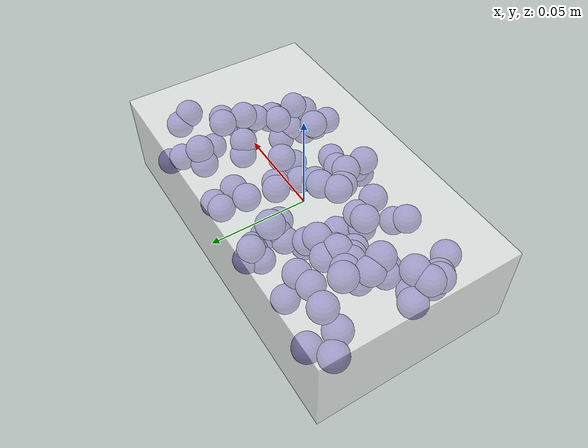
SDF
<sdf version="1.7">
  <model name="blue_berry_box_small_soft">
    <link name="base_link">
      <inertial>
        <mass>0.25</mass>
        <inertia>
          <ixx>2.505e-04</ixx>
          <ixy>0.000e+00</ixy>
          <ixz>0.000e+00</ixz>
          <iyy>7.172e-04</iyy>
          <iyz>0.000e+00</iyz>
          <izz>8.833e-04</izz>
        </inertia>
      </inertial>
      <visual name="blue_berry_box_pretty_visual_visual_box">
        <geometry>
          <box>
            <size>0.18 0.1 0.045</size>
          </box>
        </geometry>
        <material>
          <diffuse>1 1 1 0.5</diffuse>
        </material>
      </visual>
      <visual name="blue_berry_box_pretty_visual_visual_berry_0">
        <pose>-0.07430941844855744 -0.02220805133053815 0.007605354956542468 0 0 0</pose>
        <geometry>
          <sphere>
            <radius>0.007</radius>
          </sphere>
        </geometry>
        <material>
          <diffuse>0.27 0.25 0.59 1.0</diffuse>
        </material>
      </visual>
      <visual name="blue_berry_box_pretty_visual_visual_berry_1">
        <pose>-0.010653247734015048 -0.01248469615182175 0.011511769082825425 0 0 0</pose>
        <geometry>
          <sphere>
            <radius>0.007</radius>
          </sphere>
        </geometry>
        <material>
          <diffuse>0.27 0.25 0.59 1.0</diffuse>
        </material>
      </visual>
      <visual name="blue_berry_box_pretty_visual_visual_berry_2">
        <pose>0.017580059877788212 -0.008492974465506481 -0.004392680172807438 0 0 0</pose>
        <geometry>
          <sphere>
            <radius>0.007</radius>
          </sphere>
        </geometry>
        <material>
          <diffuse>0.27 0.25 0.59 1.0</diffuse>
        </material>
      </visual>
      <visual name="blue_berry_box_pretty_visual_visual_berry_3">
        <pose>-0.03567193680616104 -0.035642193882738774 8.770727036002887e-05 0 0 0</pose>
        <geometry>
          <sphere>
            <radius>0.007</radius>
          </sphere>
        </geometry>
        <material>
          <diffuse>0.27 0.25 0.59 1.0</diffuse>
        </material>
      </visual>
      <visual name="blue_berry_box_pretty_visual_visual_berry_4">
        <pose>-0.035261084901901336 0.032127740043840794 -0.015054265896921588 0 0 0</pose>
        <geometry>
          <sphere>
            <radius>0.007</radius>
          </sphere>
        </geometry>
        <material>
          <diffuse>0.27 0.25 0.59 1.0</diffuse>
        </material>
      </visual>
      <visual name="blue_berry_box_pretty_visual_visual_berry_5">
        <pose>0.06577807256967984 0.035331599129718755 -0.005038149878498498 0 0 0</pose>
        <geometry>
          <sphere>
            <radius>0.007</radius>
          </sphere>
        </geometry>
        <material>
          <diffuse>0.27 0.25 0.59 1.0</diffuse>
        </material>
      </visual>
      <visual name="blue_berry_box_pretty_visual_visual_berry_6">
        <pose>-0.0032058133105082043 0.030891159279397215 -0.011044628561388645 0 0 0</pose>
        <geometry>
          <sphere>
            <radius>0.007</radius>
          </sphere>
        </geometry>
        <material>
          <diffuse>0.27 0.25 0.59 1.0</diffuse>
        </material>
      </visual>
      <visual name="blue_berry_box_pretty_visual_visual_berry_7">
        <pose>-0.0062295520308973396 0.03359610233911847 -0.008332372904054093 0 0 0</pose>
        <geometry>
          <sphere>
            <radius>0.007</radius>
          </sphere>
        </geometry>
        <material>
          <diffuse>0.27 0.25 0.59 1.0</diffuse>
        </material>
      </visual>
      <visual name="blue_berry_box_pretty_visual_visual_berry_8">
        <pose>0.017154872599262794 -0.031200393454058364 -0.005961092467394744 0 0 0</pose>
        <geometry>
          <sphere>
            <radius>0.007</radius>
          </sphere>
        </geometry>
        <material>
          <diffuse>0.27 0.25 0.59 1.0</diffuse>
        </material>
      </visual>
      <visual name="blue_berry_box_pretty_visual_visual_berry_9">
        <pose>-0.06830007897591524 -0.021237102051463484 0.002454422257315944 0 0 0</pose>
        <geometry>
          <sphere>
            <radius>0.007</radius>
          </sphere>
        </geometry>
        <material>
          <diffuse>0.27 0.25 0.59 1.0</diffuse>
        </material>
      </visual>
      <visual name="blue_berry_box_pretty_visual_visual_berry_10">
        <pose>-0.002943727383228678 0.01754849767698608 -0.00801187686136241 0 0 0</pose>
        <geometry>
          <sphere>
            <radius>0.007</radius>
          </sphere>
        </geometry>
        <material>
          <diffuse>0.27 0.25 0.59 1.0</diffuse>
        </material>
      </visual>
      <visual name="blue_berry_box_pretty_visual_visual_berry_11">
        <pose>-0.03318796746100854 -0.007263508184341162 -0.006242321270512743 0 0 0</pose>
        <geometry>
          <sphere>
            <radius>0.007</radius>
          </sphere>
        </geometry>
        <material>
          <diffuse>0.27 0.25 0.59 1.0</diffuse>
        </material>
      </visual>
      <visual name="blue_berry_box_pretty_visual_visual_berry_12">
        <pose>-0.007702137197730455 0.015945597468279817 -0.011449758405233327 0 0 0</pose>
        <geometry>
          <sphere>
            <radius>0.007</radius>
          </sphere>
        </geometry>
        <material>
          <diffuse>0.27 0.25 0.59 1.0</diffuse>
        </material>
      </visual>
      <visual name="blue_berry_box_pretty_visual_visual_berry_13">
        <pose>0.06255055087569998 -0.031459735568881174 -0.007772868810350005 0 0 0</pose>
        <geometry>
          <sphere>
            <radius>0.007</radius>
          </sphere>
        </geometry>
        <material>
          <diffuse>0.27 0.25 0.59 1.0</diffuse>
        </material>
      </visual>
      <visual name="blue_berry_box_pretty_visual_visual_berry_14">
        <pose>0.0776471185883804 0.0015481134314956901 -0.004604728886401234 0 0 0</pose>
        <geometry>
          <sphere>
            <radius>0.007</radius>
          </sphere>
        </geometry>
        <material>
          <diffuse>0.27 0.25 0.59 1.0</diffuse>
        </material>
      </visual>
      <visual name="blue_berry_box_pretty_visual_visual_berry_15">
        <pose>0.05949626313478422 -0.024543135567916114 -0.0041157920439034365 0 0 0</pose>
        <geometry>
          <sphere>
            <radius>0.007</radius>
          </sphere>
        </geometry>
        <material>
          <diffuse>0.27 0.25 0.59 1.0</diffuse>
        </material>
      </visual>
      <visual name="blue_berry_box_pretty_visual_visual_berry_16">
        <pose>0.00035443136602957004 -0.030869643147678195 0.006612451281425402 0 0 0</pose>
        <geometry>
          <sphere>
            <radius>0.007</radius>
          </sphere>
        </geometry>
        <material>
          <diffuse>0.27 0.25 0.59 1.0</diffuse>
        </material>
      </visual>
      <visual name="blue_berry_box_pretty_visual_visual_berry_17">
        <pose>-0.054748603497142556 -0.004947284016110831 0.012503631220972575 0 0 0</pose>
        <geometry>
          <sphere>
            <radius>0.007</radius>
          </sphere>
        </geometry>
        <material>
          <diffuse>0.27 0.25 0.59 1.0</diffuse>
        </material>
      </visual>
      <visual name="blue_berry_box_pretty_visual_visual_berry_18">
        <pose>0.060933551916554654 -0.00027376525656826883 0.011236244512459522 0 0 0</pose>
        <geometry>
          <sphere>
            <radius>0.007</radius>
          </sphere>
        </geometry>
        <material>
          <diffuse>0.27 0.25 0.59 1.0</diffuse>
        </material>
      </visual>
      <visual name="blue_berry_box_pretty_visual_visual_berry_19">
        <pose>0.07594882271148369 0.030059822415339443 0.00793514494786279 0 0 0</pose>
        <geometry>
          <sphere>
            <radius>0.007</radius>
          </sphere>
        </geometry>
        <material>
          <diffuse>0.27 0.25 0.59 1.0</diffuse>
        </material>
      </visual>
      <visual name="blue_berry_box_pretty_visual_visual_berry_20">
        <pose>0.05453813748763013 -0.024797790500372792 -0.0034131668532808405 0 0 0</pose>
        <geometry>
          <sphere>
            <radius>0.007</radius>
          </sphere>
        </geometry>
        <material>
          <diffuse>0.27 0.25 0.59 1.0</diffuse>
        </material>
      </visual>
      <visual name="blue_berry_box_pretty_visual_visual_berry_21">
        <pose>-0.07598131055630648 -0.00705259609198864 0.0025270978275175084 0 0 0</pose>
        <geometry>
          <sphere>
            <radius>0.007</radius>
          </sphere>
        </geometry>
        <material>
          <diffuse>0.27 0.25 0.59 1.0</diffuse>
        </material>
      </visual>
      <visual name="blue_berry_box_pretty_visual_visual_berry_22">
        <pose>0.010238926865785342 -0.01319278076681732 -0.0008949729615662042 0 0 0</pose>
        <geometry>
          <sphere>
            <radius>0.007</radius>
          </sphere>
        </geometry>
        <material>
          <diffuse>0.27 0.25 0.59 1.0</diffuse>
        </material>
      </visual>
      <visual name="blue_berry_box_pretty_visual_visual_berry_23">
        <pose>0.014515396366447983 0.007387775033332586 0.00023804356813362376 0 0 0</pose>
        <geometry>
          <sphere>
            <radius>0.007</radius>
          </sphere>
        </geometry>
        <material>
          <diffuse>0.27 0.25 0.59 1.0</diffuse>
        </material>
      </visual>
      <visual name="blue_berry_box_pretty_visual_visual_berry_24">
        <pose>0.04728213464054022 0.008433526938565236 -0.002210164741740163 0 0 0</pose>
        <geometry>
          <sphere>
            <radius>0.007</radius>
          </sphere>
        </geometry>
        <material>
          <diffuse>0.27 0.25 0.59 1.0</diffuse>
        </material>
      </visual>
      <visual name="blue_berry_box_pretty_visual_visual_berry_25">
        <pose>-0.07124653371825916 -0.024943125911344146 0.004950692700793149 0 0 0</pose>
        <geometry>
          <sphere>
            <radius>0.007</radius>
          </sphere>
        </geometry>
        <material>
          <diffuse>0.27 0.25 0.59 1.0</diffuse>
        </material>
      </visual>
      <visual name="blue_berry_box_pretty_visual_visual_berry_26">
        <pose>-0.03417567452455912 0.02500189983968687 -0.0019291013954617266 0 0 0</pose>
        <geometry>
          <sphere>
            <radius>0.007</radius>
          </sphere>
        </geometry>
        <material>
          <diffuse>0.27 0.25 0.59 1.0</diffuse>
        </material>
      </visual>
      <visual name="blue_berry_box_pretty_visual_visual_berry_27">
        <pose>0.006534544866611688 -0.038967403472837156 -0.006638502963409397 0 0 0</pose>
        <geometry>
          <sphere>
            <radius>0.007</radius>
          </sphere>
        </geometry>
        <material>
          <diffuse>0.27 0.25 0.59 1.0</diffuse>
        </material>
      </visual>
      <visual name="blue_berry_box_pretty_visual_visual_berry_28">
        <pose>0.022123895573799138 0.03446577979108177 -0.005336488941639551 0 0 0</pose>
        <geometry>
          <sphere>
            <radius>0.007</radius>
          </sphere>
        </geometry>
        <material>
          <diffuse>0.27 0.25 0.59 1.0</diffuse>
        </material>
      </visual>
      <visual name="blue_berry_box_pretty_visual_visual_berry_29">
        <pose>0.04902932329309374 -0.03810433335872243 -0.005135683307480715 0 0 0</pose>
        <geometry>
          <sphere>
            <radius>0.007</radius>
          </sphere>
        </geometry>
        <material>
          <diffuse>0.27 0.25 0.59 1.0</diffuse>
        </material>
      </visual>
      <visual name="blue_berry_box_pretty_visual_visual_berry_30">
        <pose>0.0605188546677516 0.012213101160558466 0.011934951121733355 0 0 0</pose>
        <geometry>
          <sphere>
            <radius>0.007</radius>
          </sphere>
        </geometry>
        <material>
          <diffuse>0.27 0.25 0.59 1.0</diffuse>
        </material>
      </visual>
      <visual name="blue_berry_box_pretty_visual_visual_berry_31">
        <pose>-0.028794012715577785 -0.015541540329592655 0.005668702694232346 0 0 0</pose>
        <geometry>
          <sphere>
            <radius>0.007</radius>
          </sphere>
        </geometry>
        <material>
          <diffuse>0.27 0.25 0.59 1.0</diffuse>
        </material>
      </visual>
      <visual name="blue_berry_box_pretty_visual_visual_berry_32">
        <pose>0.05031785434824483 0.006183280432119451 0.004059474242607778 0 0 0</pose>
        <geometry>
          <sphere>
            <radius>0.007</radius>
          </sphere>
        </geometry>
        <material>
          <diffuse>0.27 0.25 0.59 1.0</diffuse>
        </material>
      </visual>
      <visual name="blue_berry_box_pretty_visual_visual_berry_33">
        <pose>0.07388403911592308 -0.0010925911684334377 -0.004902617009221658 0 0 0</pose>
        <geometry>
          <sphere>
            <radius>0.007</radius>
          </sphere>
        </geometry>
        <material>
          <diffuse>0.27 0.25 0.59 1.0</diffuse>
        </material>
      </visual>
      <visual name="blue_berry_box_pretty_visual_visual_berry_34">
        <pose>0.07600698332272264 0.024158775778753888 0.012718406714143083 0 0 0</pose>
        <geometry>
          <sphere>
            <radius>0.007</radius>
          </sphere>
        </geometry>
        <material>
          <diffuse>0.27 0.25 0.59 1.0</diffuse>
        </material>
      </visual>
      <visual name="blue_berry_box_pretty_visual_visual_berry_35">
        <pose>0.03619212493658107 -0.016120443617562537 -0.011172838995657235 0 0 0</pose>
        <geometry>
          <sphere>
            <radius>0.007</radius>
          </sphere>
        </geometry>
        <material>
          <diffuse>0.27 0.25 0.59 1.0</diffuse>
        </material>
      </visual>
      <visual name="blue_berry_box_pretty_visual_visual_berry_36">
        <pose>-0.0006015486096225264 0.023400449216627914 -0.010672793394678949 0 0 0</pose>
        <geometry>
          <sphere>
            <radius>0.007</radius>
          </sphere>
        </geometry>
        <material>
          <diffuse>0.27 0.25 0.59 1.0</diffuse>
        </material>
      </visual>
      <visual name="blue_berry_box_pretty_visual_visual_berry_37">
        <pose>-0.01826089099157023 0.009811260075595477 -0.005278866176524495 0 0 0</pose>
        <geometry>
          <sphere>
            <radius>0.007</radius>
          </sphere>
        </geometry>
        <material>
          <diffuse>0.27 0.25 0.59 1.0</diffuse>
        </material>
      </visual>
      <visual name="blue_berry_box_pretty_visual_visual_berry_38">
        <pose>0.0012108057978841152 0.013584440966824887 -0.00736994207304772 0 0 0</pose>
        <geometry>
          <sphere>
            <radius>0.007</radius>
          </sphere>
        </geometry>
        <material>
          <diffuse>0.27 0.25 0.59 1.0</diffuse>
        </material>
      </visual>
      <visual name="blue_berry_box_pretty_visual_visual_berry_39">
        <pose>0.07022242801046451 0.015179606015708967 -0.010507125256096731 0 0 0</pose>
        <geometry>
          <sphere>
            <radius>0.007</radius>
          </sphere>
        </geometry>
        <material>
          <diffuse>0.27 0.25 0.59 1.0</diffuse>
        </material>
      </visual>
      <visual name="blue_berry_box_pretty_visual_visual_berry_40">
        <pose>-0.03615063826479615 0.0047325640426842674 0.004589359452489908 0 0 0</pose>
        <geometry>
          <sphere>
            <radius>0.007</radius>
          </sphere>
        </geometry>
        <material>
          <diffuse>0.27 0.25 0.59 1.0</diffuse>
        </material>
      </visual>
      <visual name="blue_berry_box_pretty_visual_visual_berry_41">
        <pose>0.07197640125141654 0.007674682254426114 0.005089708965982109 0 0 0</pose>
        <geometry>
          <sphere>
            <radius>0.007</radius>
          </sphere>
        </geometry>
        <material>
          <diffuse>0.27 0.25 0.59 1.0</diffuse>
        </material>
      </visual>
      <visual name="blue_berry_box_pretty_visual_visual_berry_42">
        <pose>0.0763707881147593 -0.027210230524342377 -0.01114150620720165 0 0 0</pose>
        <geometry>
          <sphere>
            <radius>0.007</radius>
          </sphere>
        </geometry>
        <material>
          <diffuse>0.27 0.25 0.59 1.0</diffuse>
        </material>
      </visual>
      <visual name="blue_berry_box_pretty_visual_visual_berry_43">
        <pose>-0.002672267823444388 -0.007548889386112187 0.01053533311089793 0 0 0</pose>
        <geometry>
          <sphere>
            <radius>0.007</radius>
          </sphere>
        </geometry>
        <material>
          <diffuse>0.27 0.25 0.59 1.0</diffuse>
        </material>
      </visual>
      <visual name="blue_berry_box_pretty_visual_visual_berry_44">
        <pose>0.03950487163105089 -0.03899954641209729 0.0060132548048387816 0 0 0</pose>
        <geometry>
          <sphere>
            <radius>0.007</radius>
          </sphere>
        </geometry>
        <material>
          <diffuse>0.27 0.25 0.59 1.0</diffuse>
        </material>
      </visual>
      <visual name="blue_berry_box_pretty_visual_visual_berry_45">
        <pose>-0.06769092222668242 -0.01350566584322592 0.01167395453224505 0 0 0</pose>
        <geometry>
          <sphere>
            <radius>0.007</radius>
          </sphere>
        </geometry>
        <material>
          <diffuse>0.27 0.25 0.59 1.0</diffuse>
        </material>
      </visual>
      <visual name="blue_berry_box_pretty_visual_visual_berry_46">
        <pose>-0.06433823157508109 -0.03468865585595129 0.004015475046962352 0 0 0</pose>
        <geometry>
          <sphere>
            <radius>0.007</radius>
          </sphere>
        </geometry>
        <material>
          <diffuse>0.27 0.25 0.59 1.0</diffuse>
        </material>
      </visual>
      <visual name="blue_berry_box_pretty_visual_visual_berry_47">
        <pose>-0.008013471426251126 -0.017170665862562457 0.009616575296064345 0 0 0</pose>
        <geometry>
          <sphere>
            <radius>0.007</radius>
          </sphere>
        </geometry>
        <material>
          <diffuse>0.27 0.25 0.59 1.0</diffuse>
        </material>
      </visual>
      <visual name="blue_berry_box_pretty_visual_visual_berry_48">
        <pose>-0.04835992249163629 0.0006451941123449545 -0.008428327510181566 0 0 0</pose>
        <geometry>
          <sphere>
            <radius>0.007</radius>
          </sphere>
        </geometry>
        <material>
          <diffuse>0.27 0.25 0.59 1.0</diffuse>
        </material>
      </visual>
      <visual name="blue_berry_box_pretty_visual_visual_berry_49">
        <pose>0.058867890456333574 -0.029976659044922006 0.0066501383930889675 0 0 0</pose>
        <geometry>
          <sphere>
            <radius>0.007</radius>
          </sphere>
        </geometry>
        <material>
          <diffuse>0.27 0.25 0.59 1.0</diffuse>
        </material>
      </visual>
      <visual name="blue_berry_box_pretty_visual_visual_berry_50">
        <pose>-0.030310372514932536 -0.03232660106282475 -0.004387197593758312 0 0 0</pose>
        <geometry>
          <sphere>
            <radius>0.007</radius>
          </sphere>
        </geometry>
        <material>
          <diffuse>0.27 0.25 0.59 1.0</diffuse>
        </material>
      </visual>
      <visual name="blue_berry_box_pretty_visual_visual_berry_51">
        <pose>-0.054413558057145234 -0.009721529172439063 -0.0042448180270335464 0 0 0</pose>
        <geometry>
          <sphere>
            <radius>0.007</radius>
          </sphere>
        </geometry>
        <material>
          <diffuse>0.27 0.25 0.59 1.0</diffuse>
        </material>
      </visual>
      <visual name="blue_berry_box_pretty_visual_visual_berry_52">
        <pose>0.028197331314653434 0.035490290283721915 -0.006693340328069243 0 0 0</pose>
        <geometry>
          <sphere>
            <radius>0.007</radius>
          </sphere>
        </geometry>
        <material>
          <diffuse>0.27 0.25 0.59 1.0</diffuse>
        </material>
      </visual>
      <visual name="blue_berry_box_pretty_visual_visual_berry_53">
        <pose>-0.042915633831621974 0.023223680577532047 -0.001705723436143735 0 0 0</pose>
        <geometry>
          <sphere>
            <radius>0.007</radius>
          </sphere>
        </geometry>
        <material>
          <diffuse>0.27 0.25 0.59 1.0</diffuse>
        </material>
      </visual>
      <visual name="blue_berry_box_pretty_visual_visual_berry_54">
        <pose>-0.06475077229717249 -0.018691110475627763 -0.011185192438396777 0 0 0</pose>
        <geometry>
          <sphere>
            <radius>0.007</radius>
          </sphere>
        </geometry>
        <material>
          <diffuse>0.27 0.25 0.59 1.0</diffuse>
        </material>
      </visual>
      <visual name="blue_berry_box_pretty_visual_visual_berry_55">
        <pose>0.0294265387297509 0.02359790084405987 -0.0035865493407679933 0 0 0</pose>
        <geometry>
          <sphere>
            <radius>0.007</radius>
          </sphere>
        </geometry>
        <material>
          <diffuse>0.27 0.25 0.59 1.0</diffuse>
        </material>
      </visual>
      <visual name="blue_berry_box_pretty_visual_visual_berry_56">
        <pose>0.06849076193416691 -0.00570294731360254 -0.002126871321804497 0 0 0</pose>
        <geometry>
          <sphere>
            <radius>0.007</radius>
          </sphere>
        </geometry>
        <material>
          <diffuse>0.27 0.25 0.59 1.0</diffuse>
        </material>
      </visual>
      <visual name="blue_berry_box_pretty_visual_visual_berry_57">
        <pose>-0.07716129613321995 0.03397048391533812 -0.0017080890514379748 0 0 0</pose>
        <geometry>
          <sphere>
            <radius>0.007</radius>
          </sphere>
        </geometry>
        <material>
          <diffuse>0.27 0.25 0.59 1.0</diffuse>
        </material>
      </visual>
      <visual name="blue_berry_box_pretty_visual_visual_berry_58">
        <pose>-0.019240307312201943 -0.0274326909921679 0.004309547943022865 0 0 0</pose>
        <geometry>
          <sphere>
            <radius>0.007</radius>
          </sphere>
        </geometry>
        <material>
          <diffuse>0.27 0.25 0.59 1.0</diffuse>
        </material>
      </visual>
      <visual name="blue_berry_box_pretty_visual_visual_berry_59">
        <pose>0.054809891351062415 -0.0175102237175475 0.005300559218856082 0 0 0</pose>
        <geometry>
          <sphere>
            <radius>0.007</radius>
          </sphere>
        </geometry>
        <material>
          <diffuse>0.27 0.25 0.59 1.0</diffuse>
        </material>
      </visual>
      <visual name="blue_berry_box_pretty_visual_visual_berry_60">
        <pose>-0.01333797530253343 0.007836870891185219 -0.015225930007212181 0 0 0</pose>
        <geometry>
          <sphere>
            <radius>0.007</radius>
          </sphere>
        </geometry>
        <material>
          <diffuse>0.27 0.25 0.59 1.0</diffuse>
        </material>
      </visual>
      <visual name="blue_berry_box_pretty_visual_visual_berry_61">
        <pose>-0.05666698980600414 0.001673773197137747 0.009286747675382533 0 0 0</pose>
        <geometry>
          <sphere>
            <radius>0.007</radius>
          </sphere>
        </geometry>
        <material>
          <diffuse>0.27 0.25 0.59 1.0</diffuse>
        </material>
      </visual>
      <visual name="blue_berry_box_pretty_visual_visual_berry_62">
        <pose>0.04765709228682867 0.03168267579520105 0.01291280321330291 0 0 0</pose>
        <geometry>
          <sphere>
            <radius>0.007</radius>
          </sphere>
        </geometry>
        <material>
          <diffuse>0.27 0.25 0.59 1.0</diffuse>
        </material>
      </visual>
      <visual name="blue_berry_box_pretty_visual_visual_berry_63">
        <pose>0.07560667397385303 0.03909638786216764 -0.014273140160634462 0 0 0</pose>
        <geometry>
          <sphere>
            <radius>0.007</radius>
          </sphere>
        </geometry>
        <material>
          <diffuse>0.27 0.25 0.59 1.0</diffuse>
        </material>
      </visual>
      <visual name="blue_berry_box_pretty_visual_visual_berry_64">
        <pose>-0.02094223187802386 -0.017151158525740704 0.0006114666960197225 0 0 0</pose>
        <geometry>
          <sphere>
            <radius>0.007</radius>
          </sphere>
        </geometry>
        <material>
          <diffuse>0.27 0.25 0.59 1.0</diffuse>
        </material>
      </visual>
      <visual name="blue_berry_box_pretty_visual_visual_berry_65">
        <pose>-0.03489105436547574 0.010889501132614152 0.0013974124036197286 0 0 0</pose>
        <geometry>
          <sphere>
            <radius>0.007</radius>
          </sphere>
        </geometry>
        <material>
          <diffuse>0.27 0.25 0.59 1.0</diffuse>
        </material>
      </visual>
      <visual name="blue_berry_box_pretty_visual_visual_berry_66">
        <pose>0.06127169254676769 -0.038278691312218706 -0.0012454148604017327 0 0 0</pose>
        <geometry>
          <sphere>
            <radius>0.007</radius>
          </sphere>
        </geometry>
        <material>
          <diffuse>0.27 0.25 0.59 1.0</diffuse>
        </material>
      </visual>
      <visual name="blue_berry_box_pretty_visual_visual_berry_67">
        <pose>0.08073000392358477 -0.00516362641853102 -0.012264060038256757 0 0 0</pose>
        <geometry>
          <sphere>
            <radius>0.007</radius>
          </sphere>
        </geometry>
        <material>
          <diffuse>0.27 0.25 0.59 1.0</diffuse>
        </material>
      </visual>
      <visual name="blue_berry_box_pretty_visual_visual_berry_68">
        <pose>-0.0650107016941064 0.03906614227766968 -0.008198837051346174 0 0 0</pose>
        <geometry>
          <sphere>
            <radius>0.007</radius>
          </sphere>
        </geometry>
        <material>
          <diffuse>0.27 0.25 0.59 1.0</diffuse>
        </material>
      </visual>
      <visual name="blue_berry_box_pretty_visual_visual_berry_69">
        <pose>-0.07025416492256523 -0.023562731653669844 -0.0036711605254015414 0 0 0</pose>
        <geometry>
          <sphere>
            <radius>0.007</radius>
          </sphere>
        </geometry>
        <material>
          <diffuse>0.27 0.25 0.59 1.0</diffuse>
        </material>
      </visual>
      <visual name="blue_berry_box_pretty_visual_visual_berry_70">
        <pose>-0.001968958004177776 -0.03333519385247273 0.012396658994376735 0 0 0</pose>
        <geometry>
          <sphere>
            <radius>0.007</radius>
          </sphere>
        </geometry>
        <material>
          <diffuse>0.27 0.25 0.59 1.0</diffuse>
        </material>
      </visual>
      <visual name="blue_berry_box_pretty_visual_visual_berry_71">
        <pose>-0.05476023558487057 0.014742781804943636 0.012272529708558973 0 0 0</pose>
        <geometry>
          <sphere>
            <radius>0.007</radius>
          </sphere>
        </geometry>
        <material>
          <diffuse>0.27 0.25 0.59 1.0</diffuse>
        </material>
      </visual>
      <visual name="blue_berry_box_pretty_visual_visual_berry_72">
        <pose>-0.02163975880820214 -0.02029479530627969 -0.010921004966990382 0 0 0</pose>
        <geometry>
          <sphere>
            <radius>0.007</radius>
          </sphere>
        </geometry>
        <material>
          <diffuse>0.27 0.25 0.59 1.0</diffuse>
        </material>
      </visual>
      <visual name="blue_berry_box_pretty_visual_visual_berry_73">
        <pose>0.06179559316530865 -0.007834797954534976 0.0056983560813589455 0 0 0</pose>
        <geometry>
          <sphere>
            <radius>0.007</radius>
          </sphere>
        </geometry>
        <material>
          <diffuse>0.27 0.25 0.59 1.0</diffuse>
        </material>
      </visual>
      <visual name="blue_berry_box_pretty_visual_visual_berry_74">
        <pose>0.021152936890361004 0.004077905926322858 -0.0028445918794367184 0 0 0</pose>
        <geometry>
          <sphere>
            <radius>0.007</radius>
          </sphere>
        </geometry>
        <material>
          <diffuse>0.27 0.25 0.59 1.0</diffuse>
        </material>
      </visual>
      <visual name="blue_berry_box_pretty_visual_visual_berry_75">
        <pose>-0.047243505603619874 -0.016893814084730015 -0.012165550233674341 0 0 0</pose>
        <geometry>
          <sphere>
            <radius>0.007</radius>
          </sphere>
        </geometry>
        <material>
          <diffuse>0.27 0.25 0.59 1.0</diffuse>
        </material>
      </visual>
      <visual name="blue_berry_box_pretty_visual_visual_berry_76">
        <pose>-0.04792712767402174 0.008829367958321913 0.005559086907439621 0 0 0</pose>
        <geometry>
          <sphere>
            <radius>0.007</radius>
          </sphere>
        </geometry>
        <material>
          <diffuse>0.27 0.25 0.59 1.0</diffuse>
        </material>
      </visual>
      <visual name="blue_berry_box_pretty_visual_visual_berry_77">
        <pose>0.06962395661449435 -0.030153072824382777 -0.01349811796974889 0 0 0</pose>
        <geometry>
          <sphere>
            <radius>0.007</radius>
          </sphere>
        </geometry>
        <material>
          <diffuse>0.27 0.25 0.59 1.0</diffuse>
        </material>
      </visual>
      <visual name="blue_berry_box_pretty_visual_visual_berry_78">
        <pose>0.05384441821163906 -0.018688394712355862 -0.008691934418794383 0 0 0</pose>
        <geometry>
          <sphere>
            <radius>0.007</radius>
          </sphere>
        </geometry>
        <material>
          <diffuse>0.27 0.25 0.59 1.0</diffuse>
        </material>
      </visual>
      <visual name="blue_berry_box_pretty_visual_visual_berry_79">
        <pose>-0.0023343019642928647 -0.022613805061779027 0.01208844634581865 0 0 0</pose>
        <geometry>
          <sphere>
            <radius>0.007</radius>
          </sphere>
        </geometry>
        <material>
          <diffuse>0.27 0.25 0.59 1.0</diffuse>
        </material>
      </visual>
      <visual name="blue_berry_box_pretty_visual_visual_berry_80">
        <pose>-0.027560597036701932 0.0003483998128986643 -0.0059728523315406064 0 0 0</pose>
        <geometry>
          <sphere>
            <radius>0.007</radius>
          </sphere>
        </geometry>
        <material>
          <diffuse>0.27 0.25 0.59 1.0</diffuse>
        </material>
      </visual>
      <visual name="blue_berry_box_pretty_visual_visual_berry_81">
        <pose>-0.0619960289604031 0.029641862441370487 0.010485065147284766 0 0 0</pose>
        <geometry>
          <sphere>
            <radius>0.007</radius>
          </sphere>
        </geometry>
        <material>
          <diffuse>0.27 0.25 0.59 1.0</diffuse>
        </material>
      </visual>
      <visual name="blue_berry_box_pretty_visual_visual_berry_82">
        <pose>0.04512528400119124 0.03125222975721002 0.004816701079974575 0 0 0</pose>
        <geometry>
          <sphere>
            <radius>0.007</radius>
          </sphere>
        </geometry>
        <material>
          <diffuse>0.27 0.25 0.59 1.0</diffuse>
        </material>
      </visual>
      <visual name="blue_berry_box_pretty_visual_visual_berry_83">
        <pose>-0.07471182496589063 -0.015992286676092156 0.010568562567927608 0 0 0</pose>
        <geometry>
          <sphere>
            <radius>0.007</radius>
          </sphere>
        </geometry>
        <material>
          <diffuse>0.27 0.25 0.59 1.0</diffuse>
        </material>
      </visual>
      <visual name="blue_berry_box_pretty_visual_visual_berry_84">
        <pose>-0.02485516155288816 0.008351535005853866 0.0035907116655929036 0 0 0</pose>
        <geometry>
          <sphere>
            <radius>0.007</radius>
          </sphere>
        </geometry>
        <material>
          <diffuse>0.27 0.25 0.59 1.0</diffuse>
        </material>
      </visual>
      <visual name="blue_berry_box_pretty_visual_visual_berry_85">
        <pose>0.07179946681869491 -0.021540895462148924 -0.008890035529387278 0 0 0</pose>
        <geometry>
          <sphere>
            <radius>0.007</radius>
          </sphere>
        </geometry>
        <material>
          <diffuse>0.27 0.25 0.59 1.0</diffuse>
        </material>
      </visual>
      <visual name="blue_berry_box_pretty_visual_visual_berry_86">
        <pose>-0.015958161532759182 0.02755377892024595 0.015468365009773461 0 0 0</pose>
        <geometry>
          <sphere>
            <radius>0.007</radius>
          </sphere>
        </geometry>
        <material>
          <diffuse>0.27 0.25 0.59 1.0</diffuse>
        </material>
      </visual>
      <visual name="blue_berry_box_pretty_visual_visual_berry_87">
        <pose>0.03315161533817075 -0.026569849196511446 0.01350325228073276 0 0 0</pose>
        <geometry>
          <sphere>
            <radius>0.007</radius>
          </sphere>
        </geometry>
        <material>
          <diffuse>0.27 0.25 0.59 1.0</diffuse>
        </material>
      </visual>
      <visual name="blue_berry_box_pretty_visual_visual_berry_88">
        <pose>-0.013590243829592494 -0.010663749906977611 -0.014757728061067569 0 0 0</pose>
        <geometry>
          <sphere>
            <radius>0.007</radius>
          </sphere>
        </geometry>
        <material>
          <diffuse>0.27 0.25 0.59 1.0</diffuse>
        </material>
      </visual>
      <visual name="blue_berry_box_pretty_visual_visual_berry_89">
        <pose>0.014669770218285291 0.023639628287756703 0.0030643721773536033 0 0 0</pose>
        <geometry>
          <sphere>
            <radius>0.007</radius>
          </sphere>
        </geometry>
        <material>
          <diffuse>0.27 0.25 0.59 1.0</diffuse>
        </material>
      </visual>
      <visual name="blue_berry_box_pretty_visual_visual_berry_90">
        <pose>0.02535059897881413 -0.03309660722844288 -0.00686294294786681 0 0 0</pose>
        <geometry>
          <sphere>
            <radius>0.007</radius>
          </sphere>
        </geometry>
        <material>
          <diffuse>0.27 0.25 0.59 1.0</diffuse>
        </material>
      </visual>
      <visual name="blue_berry_box_pretty_visual_visual_berry_91">
        <pose>0.025922139053917895 -0.0029017035300102356 0.007209556837720302 0 0 0</pose>
        <geometry>
          <sphere>
            <radius>0.007</radius>
          </sphere>
        </geometry>
        <material>
          <diffuse>0.27 0.25 0.59 1.0</diffuse>
        </material>
      </visual>
      <visual name="blue_berry_box_pretty_visual_visual_berry_92">
        <pose>-0.03881759823832117 -0.0017482030335331245 -0.0015342911590960767 0 0 0</pose>
        <geometry>
          <sphere>
            <radius>0.007</radius>
          </sphere>
        </geometry>
        <material>
          <diffuse>0.27 0.25 0.59 1.0</diffuse>
        </material>
      </visual>
      <visual name="blue_berry_box_pretty_visual_visual_berry_93">
        <pose>-0.006147289509241094 0.036301550253689224 -0.014721743019543402 0 0 0</pose>
        <geometry>
          <sphere>
            <radius>0.007</radius>
          </sphere>
        </geometry>
        <material>
          <diffuse>0.27 0.25 0.59 1.0</diffuse>
        </material>
      </visual>
      <visual name="blue_berry_box_pretty_visual_visual_berry_94">
        <pose>-0.0693196217376954 0.0268558749097801 0.0006340273083797442 0 0 0</pose>
        <geometry>
          <sphere>
            <radius>0.007</radius>
          </sphere>
        </geometry>
        <material>
          <diffuse>0.27 0.25 0.59 1.0</diffuse>
        </material>
      </visual>
      <visual name="blue_berry_box_pretty_visual_visual_berry_95">
        <pose>-0.04247647044383241 0.0015589873495363005 0.0011456221133228466 0 0 0</pose>
        <geometry>
          <sphere>
            <radius>0.007</radius>
          </sphere>
        </geometry>
        <material>
          <diffuse>0.27 0.25 0.59 1.0</diffuse>
        </material>
      </visual>
      <visual name="blue_berry_box_pretty_visual_visual_berry_96">
        <pose>-0.009401235386602966 0.030050080260134296 -0.01554503481579292 0 0 0</pose>
        <geometry>
          <sphere>
            <radius>0.007</radius>
          </sphere>
        </geometry>
        <material>
          <diffuse>0.27 0.25 0.59 1.0</diffuse>
        </material>
      </visual>
      <visual name="blue_berry_box_pretty_visual_visual_berry_97">
        <pose>-0.06626990169618403 -0.01519672550894827 -0.007539307492089014 0 0 0</pose>
        <geometry>
          <sphere>
            <radius>0.007</radius>
          </sphere>
        </geometry>
        <material>
          <diffuse>0.27 0.25 0.59 1.0</diffuse>
        </material>
      </visual>
      <visual name="blue_berry_box_pretty_visual_visual_berry_98">
        <pose>0.058457369680273416 -0.03665138499470944 -0.015085856351490966 0 0 0</pose>
        <geometry>
          <sphere>
            <radius>0.007</radius>
          </sphere>
        </geometry>
        <material>
          <diffuse>0.27 0.25 0.59 1.0</diffuse>
        </material>
      </visual>
      <visual name="blue_berry_box_pretty_visual_visual_berry_99">
        <pose>0.07322885026652355 -0.023957438248785618 -0.007248406027337163 0 0 0</pose>
        <geometry>
          <sphere>
            <radius>0.007</radius>
          </sphere>
        </geometry>
        <material>
          <diffuse>0.27 0.25 0.59 1.0</diffuse>
        </material>
      </visual>
      <collision name="body">
        <geometry>
          <box>
            <size>0.178 0.098 0.043</size>
          </box>
        </geometry>
        <drake:proximity_properties>
          <drake:mu_dynamic>2.0</drake:mu_dynamic>
          <drake:mu_static>2.0</drake:mu_static>
          <drake:mesh_resolution_hint>0.02</drake:mesh_resolution_hint>
          <drake:elastic_modulus>1e5</drake:elastic_modulus>
          <drake:hunt_crossley_dissipation>5.0</drake:hunt_crossley_dissipation>
          <drake:soft_hydroelastic/>
        </drake:proximity_properties>
      </collision>

      <collision name="corner_0">
        <pose>-0.09 -0.05 -0.0225 0 0 0</pose>
        <geometry>
          <sphere>
            <radius>0.001</radius>
          </sphere>
        </geometry>
        <drake:proximity_properties>
          <drake:mu_dynamic>0.1</drake:mu_dynamic>
          <drake:mu_static>0.1</drake:mu_static>
          <drake:mesh_resolution_hint>0.02</drake:mesh_resolution_hint>
          <drake:elastic_modulus>1e5</drake:elastic_modulus>
          <drake:hunt_crossley_dissipation>5.0</drake:hunt_crossley_dissipation>
          <drake:soft_hydroelastic/>
        </drake:proximity_properties>
      </collision>
      <collision name="corner_2">
        <pose>-0.09 0.05 -0.0225 0 0 0</pose>
        <geometry>
          <sphere>
            <radius>0.001</radius>
          </sphere>
        </geometry>
        <drake:proximity_properties>
          <drake:mu_dynamic>0.1</drake:mu_dynamic>
          <drake:mu_static>0.1</drake:mu_static>
          <drake:mesh_resolution_hint>0.02</drake:mesh_resolution_hint>
          <drake:elastic_modulus>1e5</drake:elastic_modulus>
          <drake:hunt_crossley_dissipation>5.0</drake:hunt_crossley_dissipation>
          <drake:soft_hydroelastic/>
        </drake:proximity_properties>
      </collision>
      <collision name="corner_4">
        <pose>0.09 -0.05 -0.0225 0 0 0</pose>
        <geometry>
          <sphere>
            <radius>0.001</radius>
          </sphere>
        </geometry>
        <drake:proximity_properties>
          <drake:mu_dynamic>0.1</drake:mu_dynamic>
          <drake:mu_static>0.1</drake:mu_static>
          <drake:mesh_resolution_hint>0.02</drake:mesh_resolution_hint>
          <drake:elastic_modulus>1e5</drake:elastic_modulus>
          <drake:hunt_crossley_dissipation>5.0</drake:hunt_crossley_dissipation>
          <drake:soft_hydroelastic/>
        </drake:proximity_properties>
      </collision>
      <collision name="corner_6">
        <pose>0.09 0.05 -0.0225 0 0 0</pose>
        <geometry>
          <sphere>
            <radius>0.001</radius>
          </sphere>
        </geometry>
        <drake:proximity_properties>
          <drake:mu_dynamic>0.1</drake:mu_dynamic>
          <drake:mu_static>0.1</drake:mu_static>
          <drake:mesh_resolution_hint>0.02</drake:mesh_resolution_hint>
          <drake:elastic_modulus>1e5</drake:elastic_modulus>
          <drake:hunt_crossley_dissipation>5.0</drake:hunt_crossley_dissipation>
          <drake:soft_hydroelastic/>
        </drake:proximity_properties>
      </collision>
    </link>
  </model>
</sdf>
